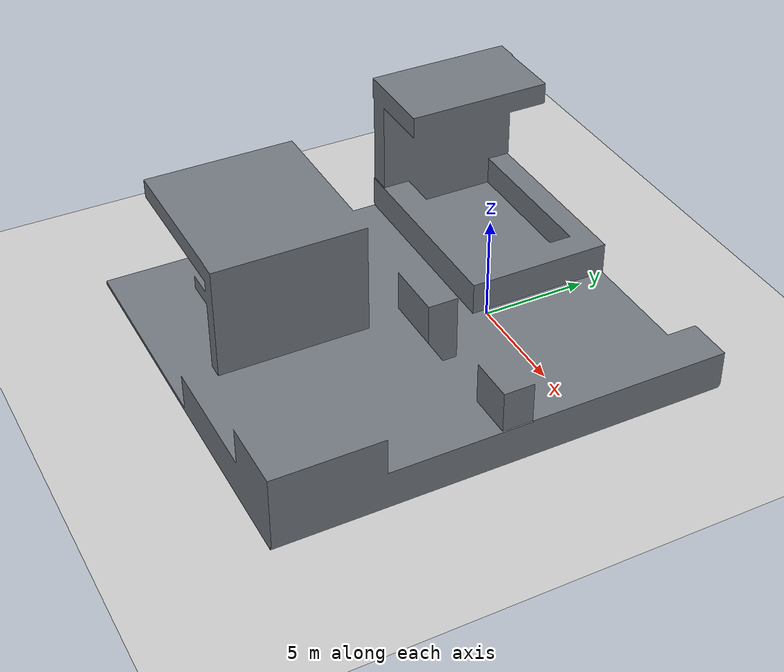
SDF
<?xml version="1.0" ?>
<sdf version="1.4">
  <world name="default">
    <include>
      <uri>model://ground_plane</uri>
    </include>
    <include>
      <uri>model://sun</uri>
    </include>
    <model name='structure'>
      <static>1</static>
      <link name='structure_link'>
        <visual name='structure_visual'>
          <pose>0 0 0 0 -0 0</pose>
          <geometry>
            <mesh>
              <uri>model://structure/structure.dae</uri>
              <scale>0.35 0.35 0.35</scale>
            </mesh>
          </geometry>
        </visual>
        <collision name='colision'>
          <geometry>
            <mesh>
              <uri>model://structure/structure.dae</uri>
              <scale>0.35 0.35 0.35</scale>
            </mesh>
          </geometry>
          <surface>
            <contact>
              <collide_bitmask>65535</collide_bitmask>
              <ode>
                <max_vel>0</max_vel>
              </ode>
            </contact>
            <friction>
              <ode>
                <mu>1000</mu>
                <mu2>500</mu2>
              </ode>
              <torsional>
                <ode/>
              </torsional>
            </friction>
            <bounce>
              <restitution_coefficient>0</restitution_coefficient>
              <threshold>0</threshold>
            </bounce>
          </surface>
          <max_contacts>10</max_contacts>
        </collision>
        <self_collide>0</self_collide>
        <enable_wind>0</enable_wind>
        <kinematic>0</kinematic>
      </link>
      <pose>0 0 0 0 -0 0</pose>
    </model>
  </world>
</sdf>
